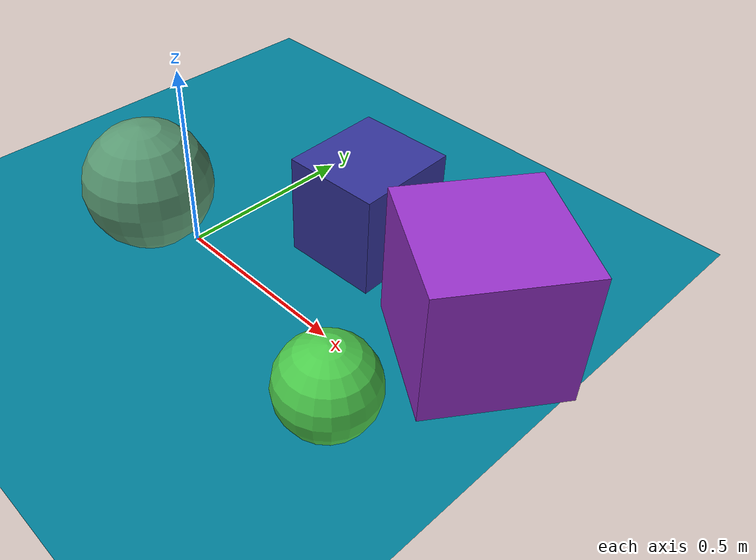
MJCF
<mujoco>
   <asset>
<texture type="skybox" builtin="gradient" rgb1="0.5 0.7 0.8" rgb2="0.7 0.4 0.7" width="256" height="256"/>
<texture name="flat_0" builtin="flat" rgb1="0.2 0.2 0.6" rgb2="0.2 0.2 0.6"  width="200" height="200"/>
<texture name="gradient_1" builtin="gradient" rgb1="0.6 1.0 0.3" rgb2="0.0 0.6 0.3" width="200" height="200"/>
<texture name="gradient_2" builtin="gradient" rgb1="0.8 0.3 0.9" rgb2="0.4 0.1 0.7" width="200" height="200"/>
<texture name="checker_3" builtin="checker" rgb1="0.7 0.6 0.5" rgb2="0.0 0.6 0.4" width="200" height="200"/><material name="flat_0_mat" reflectance="0" texture="flat_0" texuniform="true"/>
<material name="gradient_1_mat" reflectance="0" texture="gradient_1" texuniform="true"/>
<material name="gradient_2_mat" reflectance="0" texture="gradient_2" texuniform="true"/>
<material name="checker_3_mat" reflectance="0" texrepeat="5 5" texture="checker_3" texuniform="false" />
   </asset>

   <worldbody>
      <light diffuse=".9 .9 .9" pos="0 0 3" dir="0 0 -1"/>
     <geom type="plane" size="1 1 0.1" rgba="0.0 0.5 0.6 1"/>
<geom type="box" pos="0.33 0.31 0.14" size="0.13 0.14 0.14" material="flat_0_mat" euler="0 0 2" />
<geom type="sphere" pos="0.69 -0.17 0.12" size="0.12 0.12 0.12" material="gradient_1_mat" euler="0 0 51" />
<geom type="box" pos="0.77 0.22 0.18" size="0.18 0.18 0.18" material="gradient_2_mat" euler="0 0 56" />
<geom type="sphere" pos="-0.09 -0.07 0.17" size="0.17 0.17 0.17" material="checker_3_mat" euler="0 0 67" /><camera euler="60 0 180" fovy="60" name="camera1" pos="-0.2 -1.5 1"></camera>   </worldbody>
</mujoco>
